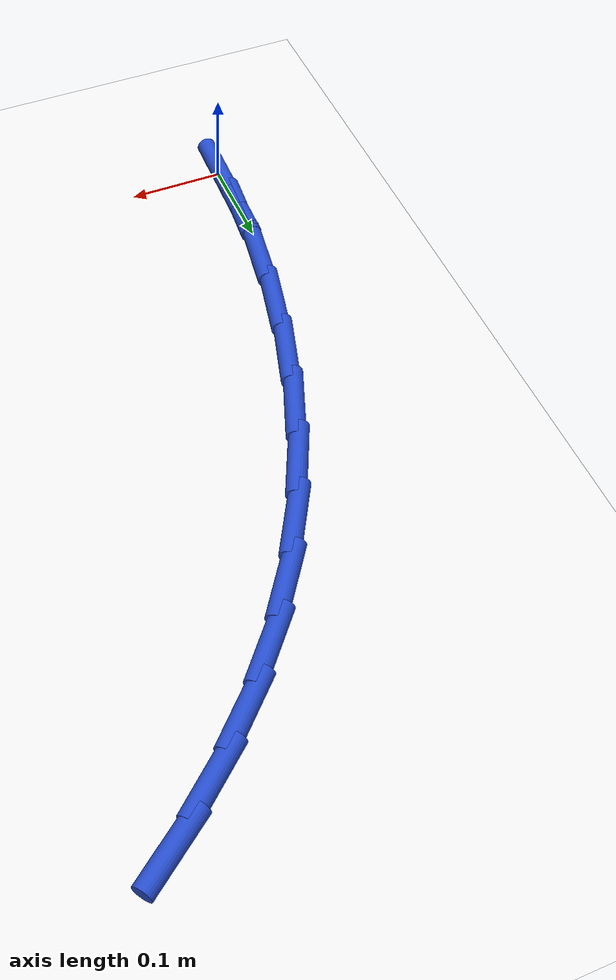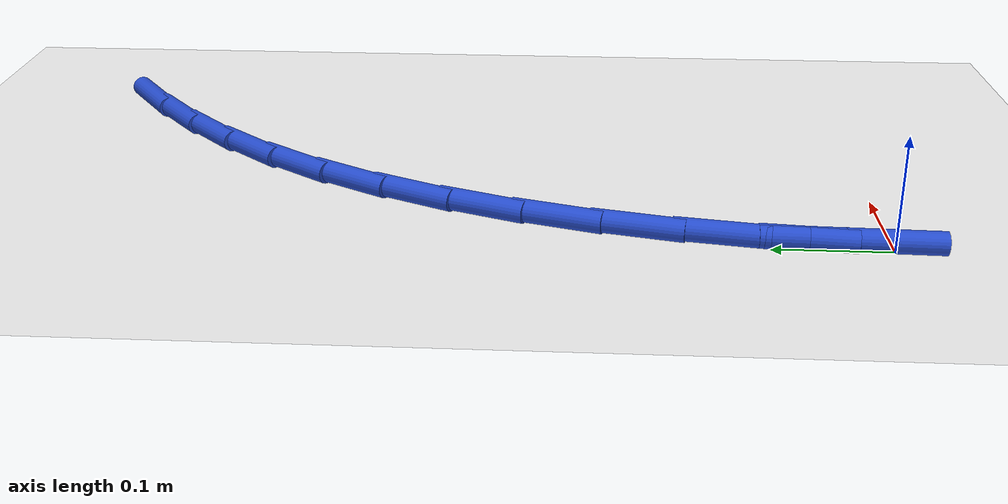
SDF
<sdf version="1.6">
 <world name="default">
  <model name="ground_plane">
   <static>1</static>
   <link name="link">
    <collision name="collision">
     <geometry><plane><normal>0 0 1</normal><size>100 100</size></plane></geometry>
     <surface><friction><ode><mu>100</mu><mu2>50</mu2></ode></friction></surface>
    </collision>
    <visual name="visual">
     <cast_shadows>0</cast_shadows>
     <geometry><plane><normal>0 0 1</normal><size>100 100</size></plane></geometry>
     <material>
      <script><uri>file://media/materials/scripts/gazebo.material</uri><name>Gazebo/WhiteGlow</name></script>
     </material>
    </visual>
   </link>
  </model>
  <model name="line">
   <link name="link_1">
    <pose>0.0023396562523310942 0.0695742652110172 0.01 0 1.57 1.4753482099272859</pose>
    <collision name="collision">
     <geometry><cylinder><radius>0.01</radius><length>0.08</length></cylinder></geometry>
    </collision>
    <visual name="visual">
     <material>
      <script><name>Gazebo/Blue</name><uri>file://media/materials/scripts/gazebo.material</uri></script>
     </material>
     <geometry><cylinder><radius>0.01</radius><length>0.08</length></cylinder></geometry>
    </visual>
   </link>
   <link name="link_2">
    <pose>0.008946995972208792 0.13858832955395772 0.01 0 1.57 1.4117803385435226</pose>
    <collision name="collision">
     <geometry><cylinder><radius>0.01</radius><length>0.08</length></cylinder></geometry>
    </collision>
    <visual name="visual">
     <material>
      <script><name>Gazebo/Blue</name><uri>file://media/materials/scripts/gazebo.material</uri></script>
     </material>
     <geometry><cylinder><radius>0.01</radius><length>0.08</length></cylinder></geometry>
    </visual>
   </link>
   <link name="link_3">
    <pose>0.019844528575650524 0.206540775928437 0.01 0 1.57 1.345576866832078</pose>
    <collision name="collision">
     <geometry><cylinder><radius>0.01</radius><length>0.08</length></cylinder></geometry>
    </collision>
    <visual name="visual">
     <material>
      <script><name>Gazebo/Blue</name><uri>file://media/materials/scripts/gazebo.material</uri></script>
     </material>
     <geometry><cylinder><radius>0.01</radius><length>0.08</length></cylinder></geometry>
    </visual>
   </link>
   <link name="link_4">
    <pose>0.03505476347867377 0.2729301872340708 0.01 0 1.57 1.275806795227668</pose>
    <collision name="collision">
     <geometry><cylinder><radius>0.01</radius><length>0.08</length></cylinder></geometry>
    </collision>
    <visual name="visual">
     <material>
      <script><name>Gazebo/Blue</name><uri>file://media/materials/scripts/gazebo.material</uri></script>
     </material>
     <geometry><cylinder><radius>0.01</radius><length>0.08</length></cylinder></geometry>
    </visual>
   </link>
   <link name="link_5">
    <pose>0.05460021009729605 0.3372551463704748 0.01 0 1.57 1.2015130369168312</pose>
    <collision name="collision">
     <geometry><cylinder><radius>0.01</radius><length>0.08</length></cylinder></geometry>
    </collision>
    <visual name="visual">
     <material>
      <script><name>Gazebo/Blue</name><uri>file://media/materials/scripts/gazebo.material</uri></script>
     </material>
     <geometry><cylinder><radius>0.01</radius><length>0.08</length></cylinder></geometry>
    </visual>
   </link>
   <link name="link_6">
    <pose>0.07850337784753478 0.3990142362372645 0.01 0 1.57 1.12173579722883</pose>
    <collision name="collision">
     <geometry><cylinder><radius>0.01</radius><length>0.08</length></cylinder></geometry>
    </collision>
    <visual name="visual">
     <material>
      <script><name>Gazebo/Blue</name><uri>file://media/materials/scripts/gazebo.material</uri></script>
     </material>
     <geometry><cylinder><radius>0.01</radius><length>0.08</length></cylinder></geometry>
    </visual>
   </link>
   <link name="link_7">
    <pose>0.10678677614540749 0.4577060397340558 0.01 0 1.57 1.0355647492075155</pose>
    <collision name="collision">
     <geometry><cylinder><radius>0.01</radius><length>0.08</length></cylinder></geometry>
    </collision>
    <visual name="visual">
     <material>
      <script><name>Gazebo/Blue</name><uri>file://media/materials/scripts/gazebo.material</uri></script>
     </material>
     <geometry><cylinder><radius>0.01</radius><length>0.08</length></cylinder></geometry>
    </visual>
   </link>
   <link name="link_8">
    <pose>0.13947291440693171 0.5128291397604642 0.01 0 1.57 0.9424667122117264</pose>
    <collision name="collision">
     <geometry><cylinder><radius>0.01</radius><length>0.08</length></cylinder></geometry>
    </collision>
    <visual name="visual">
     <material>
      <script><name>Gazebo/Blue</name><uri>file://media/materials/scripts/gazebo.material</uri></script>
     </material>
     <geometry><cylinder><radius>0.01</radius><length>0.08</length></cylinder></geometry>
    </visual>
   </link>
   <link name="link_9">
    <pose>0.17657739792242258 0.5638978896924728 0.01 0 1.57 0.8487983707575089</pose>
    <collision name="collision">
     <geometry><cylinder><radius>0.01</radius><length>0.08</length></cylinder></geometry>
    </collision>
    <visual name="visual">
     <material>
      <script><name>Gazebo/Blue</name><uri>file://media/materials/scripts/gazebo.material</uri></script>
     </material>
     <geometry><cylinder><radius>0.01</radius><length>0.08</length></cylinder></geometry>
    </visual>
   </link>
   <link name="link_10">
    <pose>0.21792828544568055 0.6108550386725129 0.01 0 1.57 0.7632086786597901</pose>
    <collision name="collision">
     <geometry><cylinder><radius>0.01</radius><length>0.08</length></cylinder></geometry>
    </collision>
    <visual name="visual">
     <material>
      <script><name>Gazebo/Blue</name><uri>file://media/materials/scripts/gazebo.material</uri></script>
     </material>
     <geometry><cylinder><radius>0.01</radius><length>0.08</length></cylinder></geometry>
    </visual>
   </link>
   <link name="link_11">
    <pose>0.2631485721499408 0.6541117442252732 0.01 0 1.57 0.6874969000309054</pose>
    <collision name="collision">
     <geometry><cylinder><radius>0.01</radius><length>0.08</length></cylinder></geometry>
    </collision>
    <visual name="visual">
     <material>
      <script><name>Gazebo/Blue</name><uri>file://media/materials/scripts/gazebo.material</uri></script>
     </material>
     <geometry><cylinder><radius>0.01</radius><length>0.08</length></cylinder></geometry>
    </visual>
   </link>
   <link name="link_12">
    <pose>0.3118508369149862 0.694102956882235 0.01 0 1.57 0.6223293933112063</pose>
    <collision name="collision">
     <geometry><cylinder><radius>0.01</radius><length>0.08</length></cylinder></geometry>
    </collision>
    <visual name="visual">
     <material>
      <script><name>Gazebo/Blue</name><uri>file://media/materials/scripts/gazebo.material</uri></script>
     </material>
     <geometry><cylinder><radius>0.01</radius><length>0.08</length></cylinder></geometry>
    </visual>
   </link>
   <link name="link_110">
    <pose>-8.673617379884035e-17 -1.3877787807814457e-17 0.01 0 1.57 1.5373693244827296</pose>
    <collision name="collision">
     <geometry><cylinder><radius>0.01</radius><length>0.08</length></cylinder></geometry>
    </collision>
    <visual name="visual">
     <material>
      <script><name>Gazebo/Blue</name><uri>file://media/materials/scripts/gazebo.material</uri></script>
     </material>
     <geometry><cylinder><radius>0.01</radius><length>0.08</length></cylinder></geometry>
    </visual>
   </link>
   <link name="link_111">
    <pose>0.0023262953830738738 0.06956737720188146 0.01 0 1.57 1.5373693244827298</pose>
    <collision name="collision">
     <geometry><cylinder><radius>0.01</radius><length>0.08</length></cylinder></geometry>
    </collision>
    <visual name="visual">
     <material>
      <script><name>Gazebo/Blue</name><uri>file://media/materials/scripts/gazebo.material</uri></script>
     </material>
     <geometry><cylinder><radius>0.01</radius><length>0.08</length></cylinder></geometry>
    </visual>
   </link>
  </model>
 </world>
</sdf>
